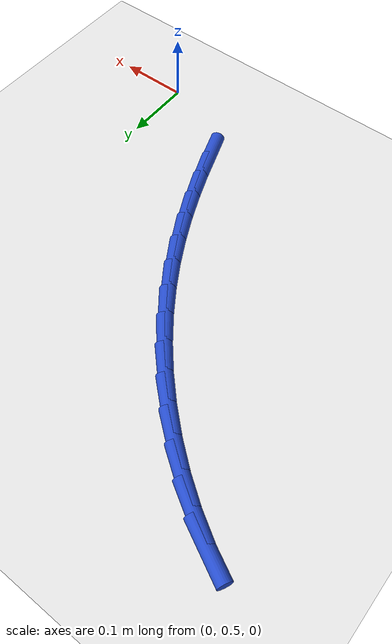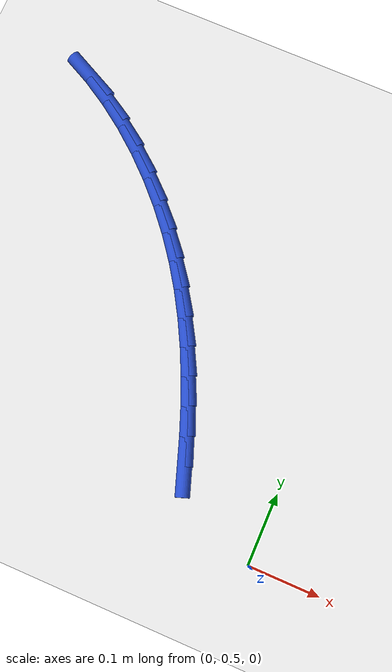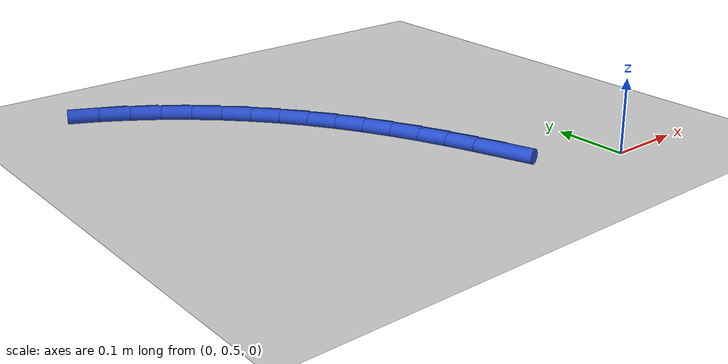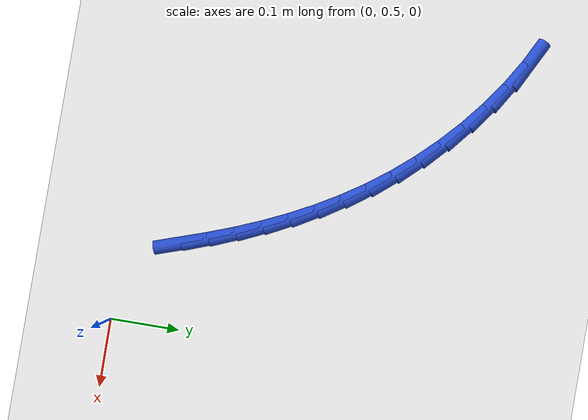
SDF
<sdf version="1.6">
 <world name="default">
  <model name="ground_plane">
   <static>1</static>
   <link name="link">
    <collision name="collision">
     <geometry><plane><normal>0 0 1</normal><size>100 100</size></plane></geometry>
     <surface><friction><ode><mu>100</mu><mu2>50</mu2></ode></friction></surface>
    </collision>
    <visual name="visual">
     <cast_shadows>0</cast_shadows>
     <geometry><plane><normal>0 0 1</normal><size>100 100</size></plane></geometry>
     <material>
      <script><uri>file://media/materials/scripts/gazebo.material</uri><name>Gazebo/WhiteGlow</name></script>
     </material>
    </visual>
   </link>
  </model>
  <model name="line">
   <link name="link_15">
    <pose>-0.1257797099422605 0.5840728287273813 0.01 0 1.57 -1.239826303305257</pose>
    <collision name="collision">
     <geometry><cylinder><radius>0.01</radius><length>0.08</length></cylinder></geometry>
    </collision>
    <visual name="visual">
     <material>
      <script><name>Gazebo/Blue</name><uri>file://media/materials/scripts/gazebo.material</uri></script>
     </material>
     <geometry><cylinder><radius>0.01</radius><length>0.08</length></cylinder></geometry>
    </visual>
   </link>
   <link name="link_16">
    <pose>-0.13873923773773672 0.6217887372470041 0.01 0 1.57 -1.2086366638595052</pose>
    <collision name="collision">
     <geometry><cylinder><radius>0.01</radius><length>0.08</length></cylinder></geometry>
    </collision>
    <visual name="visual">
     <material>
      <script><name>Gazebo/Blue</name><uri>file://media/materials/scripts/gazebo.material</uri></script>
     </material>
     <geometry><cylinder><radius>0.01</radius><length>0.08</length></cylinder></geometry>
    </visual>
   </link>
   <link name="link_17">
    <pose>-0.15284398812064406 0.6590171576516434 0.01 0 1.57 -1.1727429122406923</pose>
    <collision name="collision">
     <geometry><cylinder><radius>0.01</radius><length>0.08</length></cylinder></geometry>
    </collision>
    <visual name="visual">
     <material>
      <script><name>Gazebo/Blue</name><uri>file://media/materials/scripts/gazebo.material</uri></script>
     </material>
     <geometry><cylinder><radius>0.01</radius><length>0.08</length></cylinder></geometry>
    </visual>
   </link>
   <link name="link_18">
    <pose>-0.16826051646122073 0.6956794832524353 0.01 0 1.57 -1.1321957447311972</pose>
    <collision name="collision">
     <geometry><cylinder><radius>0.01</radius><length>0.08</length></cylinder></geometry>
    </collision>
    <visual name="visual">
     <material>
      <script><name>Gazebo/Blue</name><uri>file://media/materials/scripts/gazebo.material</uri></script>
     </material>
     <geometry><cylinder><radius>0.01</radius><length>0.08</length></cylinder></geometry>
    </visual>
   </link>
   <link name="link_19">
    <pose>-0.18515537812970465 0.7316971073605157 0.01 0 1.57 -1.0871220316178278</pose>
    <collision name="collision">
     <geometry><cylinder><radius>0.01</radius><length>0.08</length></cylinder></geometry>
    </collision>
    <visual name="visual">
     <material>
      <script><name>Gazebo/Blue</name><uri>file://media/materials/scripts/gazebo.material</uri></script>
     </material>
     <geometry><cylinder><radius>0.01</radius><length>0.08</length></cylinder></geometry>
    </visual>
   </link>
   <link name="link_20">
    <pose>-0.20369512849633414 0.7669914232870211 0.01 0 1.57 -1.0377476398930954</pose>
    <collision name="collision">
     <geometry><cylinder><radius>0.01</radius><length>0.08</length></cylinder></geometry>
    </collision>
    <visual name="visual">
     <material>
      <script><name>Gazebo/Blue</name><uri>file://media/materials/scripts/gazebo.material</uri></script>
     </material>
     <geometry><cylinder><radius>0.01</radius><length>0.08</length></cylinder></geometry>
    </visual>
   </link>
   <link name="link_21">
    <pose>-0.22404632293134738 0.8014838243430876 0.01 0 1.57 -0.9844170006511085</pose>
    <collision name="collision">
     <geometry><cylinder><radius>0.01</radius><length>0.08</length></cylinder></geometry>
    </collision>
    <visual name="visual">
     <material>
      <script><name>Gazebo/Blue</name><uri>file://media/materials/scripts/gazebo.material</uri></script>
     </material>
     <geometry><cylinder><radius>0.01</radius><length>0.08</length></cylinder></geometry>
    </visual>
   </link>
   <link name="link_22">
    <pose>-0.2463755168049822 0.8350957038398504 0.01 0 1.57 -0.9276052621905037</pose>
    <collision name="collision">
     <geometry><cylinder><radius>0.01</radius><length>0.08</length></cylinder></geometry>
    </collision>
    <visual name="visual">
     <material>
      <script><name>Gazebo/Blue</name><uri>file://media/materials/scripts/gazebo.material</uri></script>
     </material>
     <geometry><cylinder><radius>0.01</radius><length>0.08</length></cylinder></geometry>
    </visual>
   </link>
   <link name="link_23">
    <pose>-0.27084926548747706 0.8677484550884466 0.01 0 1.57 -0.8679203692435556</pose>
    <collision name="collision">
     <geometry><cylinder><radius>0.01</radius><length>0.08</length></cylinder></geometry>
    </collision>
    <visual name="visual">
     <material>
      <script><name>Gazebo/Blue</name><uri>file://media/materials/scripts/gazebo.material</uri></script>
     </material>
     <geometry><cylinder><radius>0.01</radius><length>0.08</length></cylinder></geometry>
    </visual>
   </link>
   <link name="link_24">
    <pose>-0.29763389407191215 0.8993633070807878 0.01 0 1.57 -0.8066614649383962</pose>
    <collision name="collision">
     <geometry><cylinder><radius>0.01</radius><length>0.08</length></cylinder></geometry>
    </collision>
    <visual name="visual">
     <material>
      <script><name>Gazebo/Blue</name><uri>file://media/materials/scripts/gazebo.material</uri></script>
     </material>
     <geometry><cylinder><radius>0.01</radius><length>0.08</length></cylinder></geometry>
    </visual>
   </link>
   <link name="link_25">
    <pose>-0.3267887539432026 0.9297851554162345 0.01 0 1.57 -0.7450201444126946</pose>
    <collision name="collision">
     <geometry><cylinder><radius>0.01</radius><length>0.08</length></cylinder></geometry>
    </collision>
    <visual name="visual">
     <material>
      <script><name>Gazebo/Blue</name><uri>file://media/materials/scripts/gazebo.material</uri></script>
     </material>
     <geometry><cylinder><radius>0.01</radius><length>0.08</length></cylinder></geometry>
    </visual>
   </link>
   <link name="link_26">
    <pose>-0.35809643312897166 0.9586614052419729 0.01 0 1.57 -0.681815909023707</pose>
    <collision name="collision">
     <geometry><cylinder><radius>0.01</radius><length>0.08</length></cylinder></geometry>
    </collision>
    <visual name="visual">
     <material>
      <script><name>Gazebo/Blue</name><uri>file://media/materials/scripts/gazebo.material</uri></script>
     </material>
     <geometry><cylinder><radius>0.01</radius><length>0.08</length></cylinder></geometry>
    </visual>
   </link>
   <link name="link_27">
    <pose>-0.39129535376694086 0.98560794618358 0.01 0 1.57 -0.6155791142099029</pose>
    <collision name="collision">
     <geometry><cylinder><radius>0.01</radius><length>0.08</length></cylinder></geometry>
    </collision>
    <visual name="visual">
     <material>
      <script><name>Gazebo/Blue</name><uri>file://media/materials/scripts/gazebo.material</uri></script>
     </material>
     <geometry><cylinder><radius>0.01</radius><length>0.08</length></cylinder></geometry>
    </visual>
   </link>
   <link name="link_28">
    <pose>-0.4261239379948326 1.0102406678666345 0.01 0 1.57 -0.5448117098480703</pose>
    <collision name="collision">
     <geometry><cylinder><radius>0.01</radius><length>0.08</length></cylinder></geometry>
    </collision>
    <visual name="visual">
     <material>
      <script><name>Gazebo/Blue</name><uri>file://media/materials/scripts/gazebo.material</uri></script>
     </material>
     <geometry><cylinder><radius>0.01</radius><length>0.08</length></cylinder></geometry>
    </visual>
   </link>
   <link name="link_29">
    <pose>-0.4623206079503682 1.032175459916712 0.01 0 1.57 -0.4679524198341195</pose>
    <collision name="collision">
     <geometry><cylinder><radius>0.01</radius><length>0.08</length></cylinder></geometry>
    </collision>
    <visual name="visual">
     <material>
      <script><name>Gazebo/Blue</name><uri>file://media/materials/scripts/gazebo.material</uri></script>
     </material>
     <geometry><cylinder><radius>0.01</radius><length>0.08</length></cylinder></geometry>
    </visual>
   </link>
  </model>
 </world>
</sdf>
